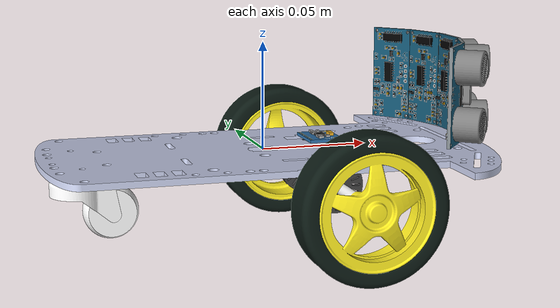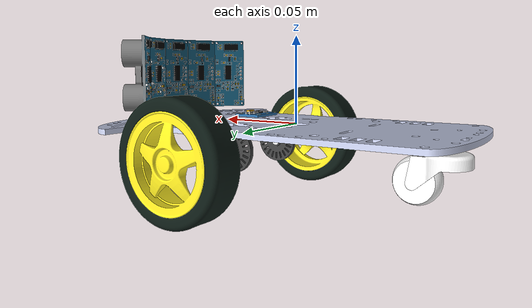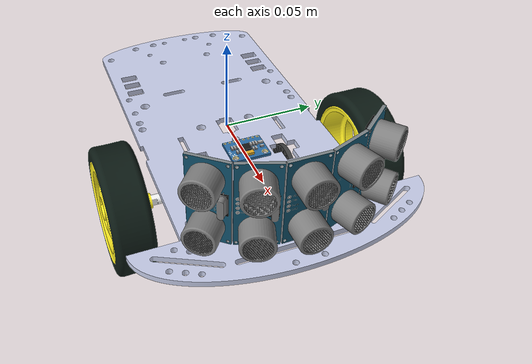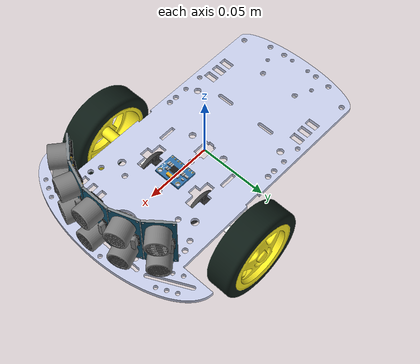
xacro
<?xml version="1.0"?>

<robot name="littlebot" xmlns:xacro="http://ros.org/wiki/xacro">

<!-- Included URDF/XACRO Files -->
<xacro:include filename="$(find littlebot_description)/urdf/rodas.xacro" />
<xacro:include filename="$(find littlebot_description)/urdf/sonar.xacro" />

 <link name="base_link">

 </link>

 <link name="chassis">
    <visual>
      <origin xyz="0 0 0" rpy="0 0 0" />
      <geometry>
        <mesh filename="package://littlebot_description/meshes/littlebot.dae" />
      </geometry>
    </visual>
    <collision>
      <origin xyz="0 0 0" rpy="0 0 0" />
      <geometry>
	      <mesh filename="package://littlebot_description/meshes/chassis.dae" />
      </geometry>
    </collision>
    <inertial>
      <origin xyz="0 0 0" rpy="0 0 0"/>
      <mass value="0.19357368"/>
      <inertia ixx="1.84569610e-4"  ixy="-4.09475462e-6"  ixz="-2.91063667e-5" iyy="7.65700035e-4" iyz="2.32776537e-8" izz="9.00861891e-4" />
    </inertial>
  </link>

  <joint name="base_to_chassis" type="fixed">
    <parent link="base_link"/>
    <child link="chassis"/>
    <origin xyz="0.0 0.0 0.0" rpy="0 0 0" />

  </joint>

  <xacro:littlebot_wheel lado_roda="esquerda">
    <origin xyz="0.0 0 0" rpy="0 0 0"/>
    <origin xyz="0.0281 0.067 -0.01425" rpy="0 0 0" />
  </xacro:littlebot_wheel>

  <xacro:littlebot_wheel lado_roda="direita">
    <origin xyz="0 0 0" rpy="0 0 3.142"/>
    <origin xyz="0.0281 -0.067 -0.01425" rpy="0 0 0" />
  </xacro:littlebot_wheel>

  <xacro:littlebot_sonar sonar_numero="1">
    <origin xyz="0 0 -0.020267" rpy="0 0 0" />
    <origin xyz="0.07879836 0.03772198 0.02500000" rpy="0 0 0.686455448" />
  </xacro:littlebot_sonar>

  <xacro:littlebot_sonar sonar_numero="2">
    <origin xyz="0 0 -0.020267" rpy="0 0 0" />
    <origin xyz="0.08880761 0.02002920 0.02500000" rpy="0 0 0.343218997"/>
  </xacro:littlebot_sonar>

  <xacro:littlebot_sonar sonar_numero="3">
    <origin xyz="0 0 -0.020267" rpy="0 0 0" />
    <origin xyz="0.092279 0.0 0.02500000" rpy="0 0 0" />
  </xacro:littlebot_sonar>

  <xacro:littlebot_sonar sonar_numero="4">
    <origin xyz="0 0 -0.020267" rpy="0 0 0" />
    <origin xyz="0.08880761 -0.02002920 0.02500000" rpy="0 0 -0.343218997"/>
  </xacro:littlebot_sonar>

  <xacro:littlebot_sonar sonar_numero="5">
    <origin xyz="0 0 -0.020267" rpy="0 0 0" />
    <origin xyz="0.07879836 -0.03772198 0.02500000" rpy="0 0 -0.686455448"/>
  </xacro:littlebot_sonar>

 <link name="imu_link">
    <visual>
      <origin xyz="0 0 0" rpy="0 0 0" />
      <geometry>
        <mesh filename="package://littlebot_description/meshes/MPU_6050.dae" />
      </geometry>
    </visual>
    <collision>
      <origin xyz="0 0 0" rpy="0 0 0" />
      <geometry>
	      <mesh filename="package://littlebot_description/meshes/MPU_6050.dae" />
      </geometry>
    </collision>
    <inertial>
      <origin xyz="0 0 0" rpy="0 0 0"/>
      <mass value="0.00142672"/>
      <inertia ixx="4.54052487e-8"  ixy="1.07305074e-10"  ixz="-2.17782593e-10" iyy="2.70451174e-8" iyz="-4.58999382e-11" izz="7.14041804e-8" />
    </inertial>
  </link>

  <joint name="chassis_to_imu" type="fixed">
    <parent link="chassis"/>
    <child link="imu_link"/>
    <origin xyz="0.028 0.0 0.005" rpy="0 0 0" />

  </joint>

  <link name="caster_wheel">
    <visual>
      <origin xyz="0 0 0" rpy="3.14 0 0" />
      <geometry>
	      <mesh filename="package://littlebot_description/meshes/Caster_Wheel_Plate.dae" />
      </geometry>
    </visual>
    <collision>
      <origin xyz="0 0 0" rpy="3.14 0 0" />
      <geometry>
	      <mesh filename="package://littlebot_description/meshes/Caster_Wheel_Plate.dae" />
      </geometry>
    </collision>
    <inertial>
      <origin xyz="0 0 0" rpy="3.14 0 0" />
      <mass value="0.01290279"/>
      <inertia ixx="1.23004519e-6"  ixy="-4.54832220e-14"  ixz="-4.88841255e-7" iyy="1.51454374e-6" iyz="-1.45133258e-14" izz="1.82945276e-6" />
    </inertial>
  </link>

  <joint name="caster_mounting_to_caster_wheel" type="continuous">
    <parent link="chassis"/>
    <child link="caster_wheel"/>
    <origin xyz="-0.087 0.0 -0.0092" rpy="0 0 0" />
    <axis xyz="0 0 1" />
  </joint>

  <transmission name="trans_caster" >
    <type>transmission_interface/SimpleTransmission</type>
    <joint name="caster_mounting_to_caster_wheel">
      <hardwareInterface>hardware_interface/EffortJointInterface</hardwareInterface>
    </joint>
    <actuator name="act_caster">
      <mechanicalReduction>1</mechanicalReduction>
    </actuator>
  </transmission>

  <gazebo reference="caster_wheel">
    <mu1 value="1.0"/>
    <mu2 value="1.0"/>
    <kp  value="10000.0" />
    <kd  value="1.0" />
    <fdir1 value="1 0 0"/>
    <turnGravityOff>false</turnGravityOff>
  </gazebo>

  <link name="wheel">
    <visual>
      <origin xyz="0 0 0" rpy="0 0 0" />
      <geometry>
	      <mesh filename="package://littlebot_description/meshes/Wheel.dae" />
      </geometry>
    </visual>
    <collision>
      <origin xyz="0 0 0" rpy="0 0 0" />
      <geometry>
	      <mesh filename="package://littlebot_description/meshes/Wheel.dae" />
      </geometry>
    </collision>
    <inertial>
      <origin xyz="0 0 0" rpy="0 0 0"/>
      <mass value="0.007"/>
      <inertia ixx="3.569e-7"  ixy="0.000e+0"  ixz="0.000e+0" iyy="5.344e-7" iyz="0.000e+0" izz="3.569e-7" />
    </inertial>
  </link>

  <joint name="caster_wheel_to_wheel" type="continuous">
    <parent link="caster_wheel"/>
    <child link="wheel"/>
    <origin xyz="0.0149 0 -0.0151" rpy="0 0 0" />
    <axis xyz="0 1 0" />
  </joint>

  <transmission name="trans_wheel" >
    <type>transmission_interface/SimpleTransmission</type>
    <joint name="caster_wheel_to_wheel">
      <hardwareInterface>hardware_interface/EffortJointInterface</hardwareInterface>
    </joint>
    <actuator name="act_wheel">
      <mechanicalReduction>1</mechanicalReduction>
    </actuator>
  </transmission>

  <gazebo reference="wheel">
    <mu1 value="100000.0"/>
    <mu2 value="100.0"/>
    <kp  value="10000000.0" />
    <kd  value="1.0" />
    <fdir1 value="1 0 0"/>
    <turnGravityOff>false</turnGravityOff>
  </gazebo>

  <gazebo>
    <plugin name="gazebo_ros_control" filename="libgazebo_ros_control.so">
      <robotNamespace>/</robotNamespace>
      <legacyModeNS>true</legacyModeNS>
    </plugin>
  </gazebo>
  <gazebo>
    <plugin name="imu_controller" filename="libhector_gazebo_ros_imu.so">
      <robotNamespace>/</robotNamespace>
      <updateRate>50.0</updateRate>
      <bodyName>imu_link</bodyName>
      <topicName>imu/data</topicName>
      <accelDrift>0.005 0.005 0.005</accelDrift>
      <accelGaussianNoise>0.005 0.005 0.005</accelGaussianNoise>
      <rateDrift>0.005 0.005 0.005 </rateDrift>
      <rateGaussianNoise>0.005 0.005 0.005 </rateGaussianNoise>
      <headingDrift>0.005</headingDrift>
      <headingGaussianNoise>0.005</headingGaussianNoise>
    </plugin>
  </gazebo>

  <xacro:macro name="sonar" params="reference topic_name">
    <gazebo reference="${reference}">
      <sensor type="ray" name="TeraRanger">
          <pose>0 0 0 0 0 0</pose>
          <visualize>false</visualize>
          <update_rate>50</update_rate>
          <ray>
            <scan>
                <horizontal>
                  <samples>10</samples>
                  <resolution>1</resolution>
                  <min_angle>-0.14835</min_angle>
                  <max_angle>0.14835</max_angle>
                </horizontal>
                <vertical>
                  <samples>10</samples>
                  <resolution>1</resolution>
                  <min_angle>-0.14835</min_angle>
                  <max_angle>0.14835</max_angle>
                </vertical>
            </scan>
            <range>
                <min>0.01</min>
                <max>2</max>
                <resolution>0.02</resolution>
            </range>
          </ray>

          <plugin filename="libgazebo_ros_range.so" name="gazebo_ros_range">
            <gaussianNoise>0.005</gaussianNoise>
            <alwaysOn>true</alwaysOn>
            <updateRate>50</updateRate>
            <topicName>sensor/${topic_name}</topicName>
            <frameName>${reference}</frameName>
            <radiation>ULTRASOUND</radiation>
            <fov>0.2967</fov>
          </plugin>
        </sensor>
      </gazebo>
  </xacro:macro>
  <xacro:sonar reference="sonar_1" topic_name="sonar1" />
  <xacro:sonar reference="sonar_2" topic_name="sonar2" />
  <xacro:sonar reference="sonar_3" topic_name="sonar3" />
  <xacro:sonar reference="sonar_4" topic_name="sonar4" />
  <xacro:sonar reference="sonar_5" topic_name="sonar5" />

</robot>

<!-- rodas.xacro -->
<robot name="littlebot_wheel" xmlns:xacro="http://ros.org/wiki/xacro" >

<xacro:macro name="littlebot_wheel" params="lado_roda *mesh_roda_pose *joint_roda_pose">
	<link name="roda_${lado_roda}">
		<visual>
			<xacro:insert_block name="mesh_roda_pose"/>
			<geometry>
				<mesh filename="package://littlebot_description/meshes/roda.dae" />
			</geometry>
		</visual>
		<collision>
			<xacro:insert_block name="mesh_roda_pose"/>
			<geometry>
				<mesh filename="package://littlebot_description/meshes/roda.dae" />
			</geometry>
		</collision>
		<inertial>
			<xacro:insert_block name="mesh_roda_pose"/>
			<mass value="0.041"/>
			<inertia ixx="2.967e-5"  ixy="-7.675e-15"  ixz="-4.765e-14" iyy="1.616e-5" iyz="-1.121e-16" izz="1.616e-5" />
		</inertial>
	</link>

	<joint name="base_to_roda_${lado_roda}" type="continuous">
		<parent link="chassis"/>
		<child link="roda_${lado_roda}"/>
		<xacro:insert_block name="joint_roda_pose"/>
		<axis xyz="0 1 0" rpy="0 0 0" />
	</joint>

	<transmission name="trans_roda_${lado_roda}">
		<type>transmission_interface/SimpleTransmission</type>
		<joint name="base_to_roda_${lado_roda}">
			<hardwareInterface>hardware_interface/VelocityJointInterface</hardwareInterface>
		</joint>
		<actuator name="roda_${lado_roda}_motor">
			<mechanicalReduction>1</mechanicalReduction>
		</actuator>
	</transmission>

	<gazebo reference="roda_${lado_roda}">
		<mu1 value="1000.0"/>
		<mu2 value="1.0"/>
		<kp value="10000000.0" />
		<kd value="1.0" />
		<fdir1 value="1 0 0"/>
	</gazebo>

</xacro:macro>

</robot>

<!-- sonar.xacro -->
<robot name="littlebot_sonar" xmlns:xacro="http://ros.org/wiki/xacro" >

	<xacro:macro name="littlebot_sonar" params="sonar_numero *meshe_pose *joint_pose">

        <link name="sonar_${sonar_numero}">
            <visual>
                <xacro:insert_block name="meshe_pose"/>
                <geometry>
                    <mesh filename="package://littlebot_description/meshes/HC-SR04.dae" />
                </geometry>
            </visual>
            <collision>
                <xacro:insert_block name="meshe_pose"/>
                <geometry>
                    <mesh filename="package://littlebot_description/meshes/HC-SR04.dae" />
                </geometry>
            </collision>
            <inertial>
                <xacro:insert_block name="meshe_pose"/>
                <mass value="0.015"/>
                <inertia ixx="5.706e-7"  ixy="6.307e-9"  ixz="2.156e-9" iyy="2.771e-6" iyz="7.710e-9" izz="2.878e-6" />
            </inertial>
        </link>

        <joint name="base_to_sonar_${sonar_numero}" type="fixed">
            <parent link="chassis"/>
            <child link="sonar_${sonar_numero}"/>
            <xacro:insert_block name="joint_pose"/>
        </joint>

	</xacro:macro>

</robot>
